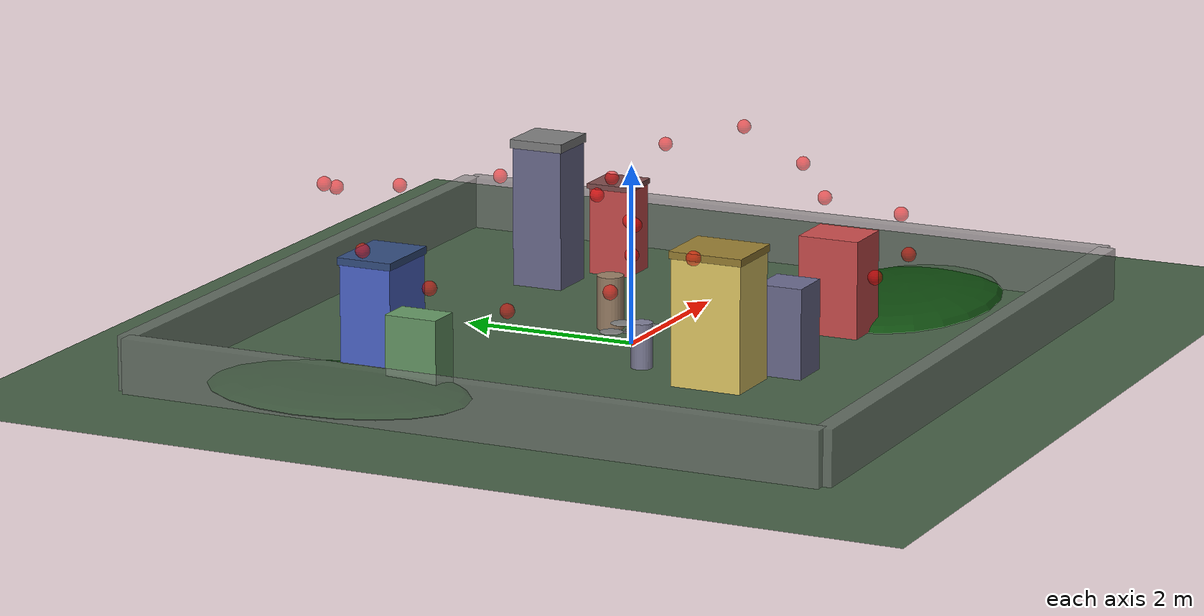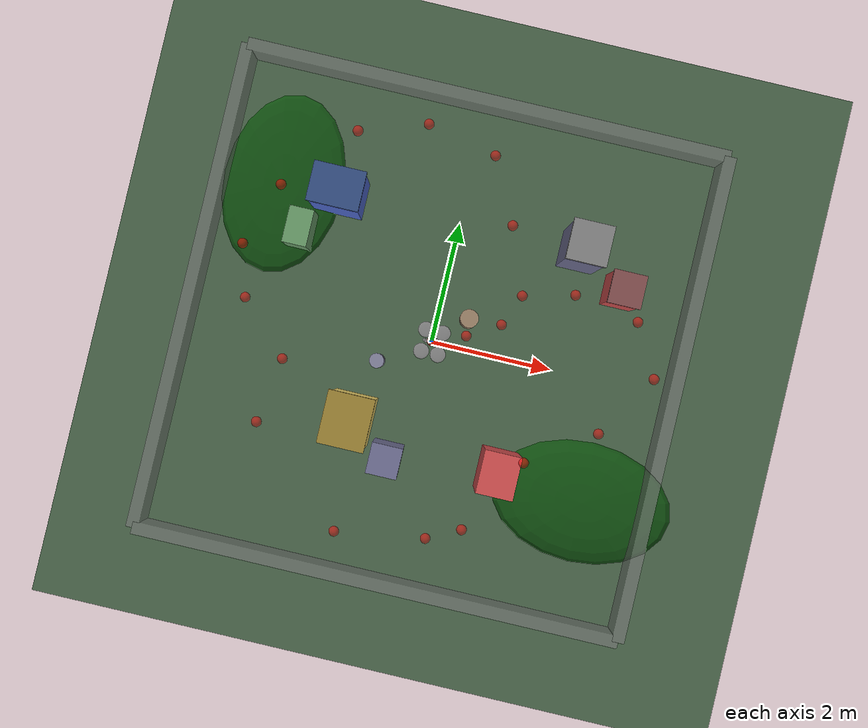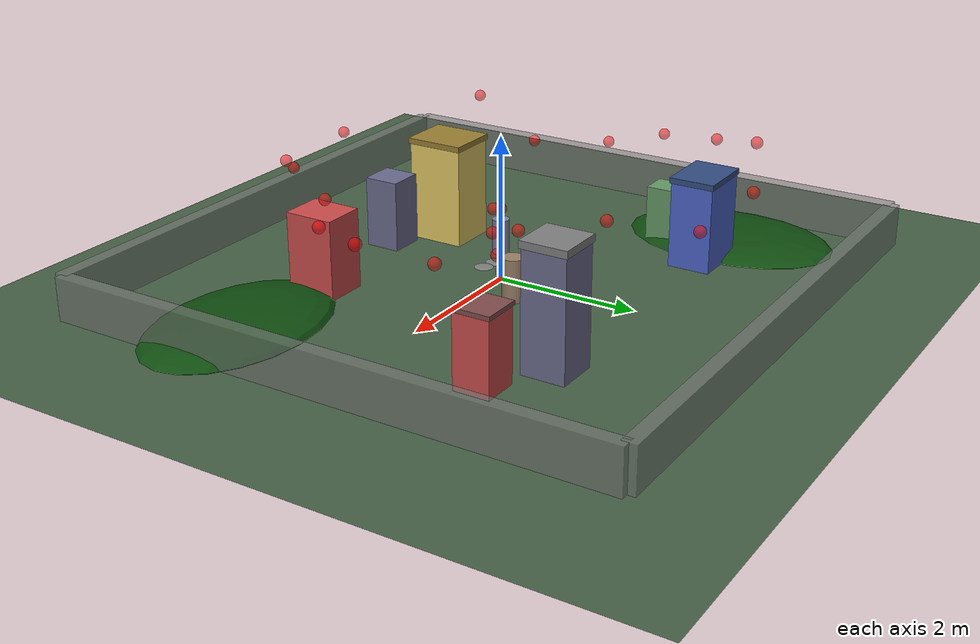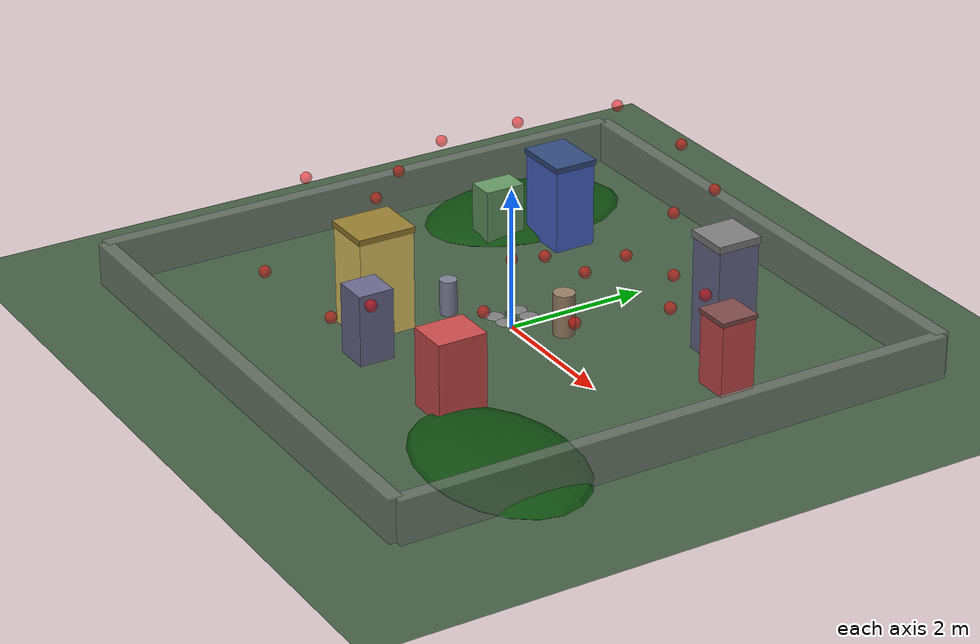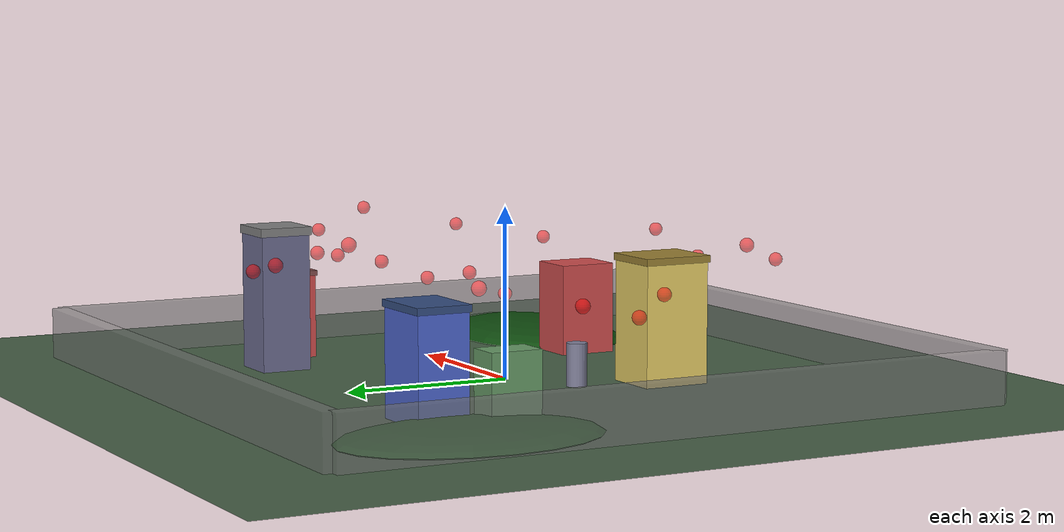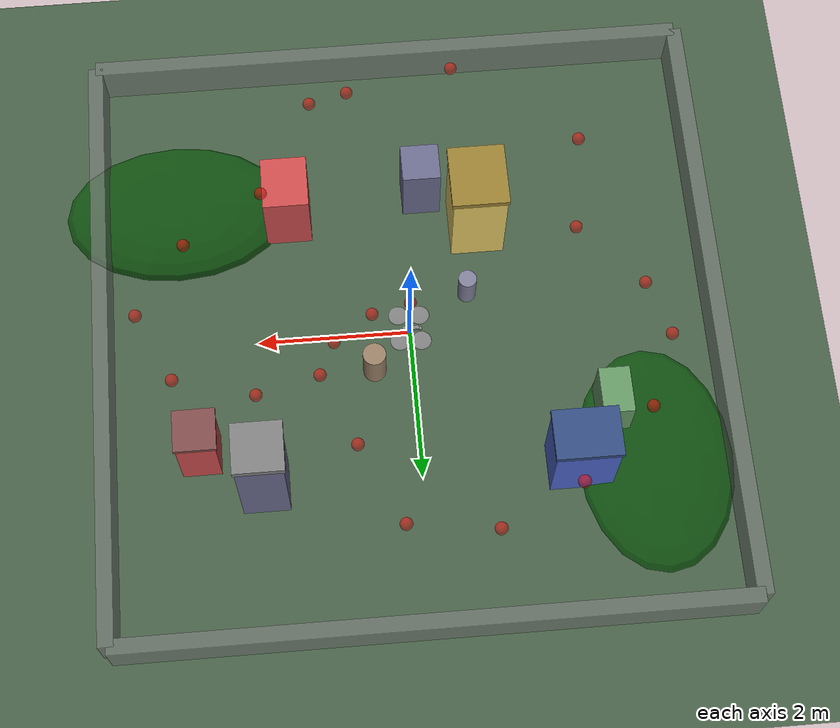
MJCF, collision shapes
<mujoco model="Skydio X2 scene">
  <include file="x2.xml"/>

  <statistic center="0 0 1" extent="4" meansize=".05"/>

  <visual>
    <headlight diffuse="0.8 0.8 0.8" ambient="0.3 0.3 0.3" specular="0 0 0"/>
    <rgba haze="0.15 0.25 0.35 1"/>
    <global azimuth="-20" elevation="-20" ellipsoidinertia="true"/>
  </visual>

  <asset>
    <texture type="skybox" builtin="gradient" rgb1="0.4 0.6 0.9" rgb2="0.1 0.2 0.4" width="512" height="3072"/>
    <texture type="2d" name="groundplane" builtin="checker" mark="edge" rgb1="0.3 0.4 0.3" rgb2="0.25 0.35 0.25"
      markrgb="0.8 0.8 0.8" width="300" height="300"/>
    <material name="groundplane" texture="groundplane" texuniform="true" texrepeat="10 10" reflectance="0.1"/>

    <!-- Building materials -->
    <texture type="2d" name="building_texture" builtin="flat" rgb1="0.6 0.6 0.7" width="100" height="100"/>
    <material name="building_mat" texture="building_texture" rgba="0.7 0.7 0.8 1" reflectance="0.3"/>
    <material name="building_red" rgba="0.8 0.3 0.3 1" reflectance="0.2"/>
    <material name="building_blue" rgba="0.3 0.4 0.8 1" reflectance="0.2"/>
    <material name="building_green" rgba="0.4 0.6 0.4 1" reflectance="0.2"/>
    <material name="building_yellow" rgba="0.9 0.8 0.4 1" reflectance="0.2"/>

    <!-- Terrain textures -->
    <texture type="2d" name="grass" builtin="flat" rgb1="0.2 0.5 0.2" width="100" height="100"/>
    <material name="grass_mat" texture="grass" rgba="0.3 0.6 0.3 1"/>

    <!-- Waypoint marker material -->
    <material name="waypoint_mat" rgba="1 0 0 0.5"/>
  </asset>

  <worldbody>
    <!-- Enhanced lighting -->
    <light pos="0 0 3" dir="0 0 -1" directional="true" diffuse="0.8 0.8 0.8"/>
    <light pos="2 2 3" dir="-0.5 -0.5 -1" directional="true" diffuse="0.4 0.4 0.5"/>

    <!-- Ground plane -->
    <geom name="floor" size="0 0 0.05" type="plane" material="groundplane"/>

    <!-- Terrain features - elevated areas / hills (visual only) -->
    <geom name="hill1" type="ellipsoid" size="1.5 1.0 0.2" pos="3 -2 0" material="grass_mat" contype="0" conaffinity="0"/>
    <geom name="hill2" type="ellipsoid" size="1.0 1.5 0.15" pos="-3 2 0" material="grass_mat" contype="0" conaffinity="0"/>

    <!-- Buildings - various sizes and colors with collisions enabled -->
    <!-- Tall building cluster 1 -->
    <body name="building1" pos="2 2 0">
      <geom type="box" size="0.3 0.3 0.8" pos="0 0 0.8" material="building_mat"/>
      <geom type="box" size="0.32 0.32 0.05" pos="0 0 1.65" rgba="0.5 0.5 0.5 1"/>
    </body>

    <body name="building2" pos="2.8 1.5 0">
      <geom type="box" size="0.25 0.25 0.5" pos="0 0 0.5" material="building_red"/>
      <geom type="box" size="0.27 0.27 0.03" pos="0 0 1.03" rgba="0.5 0.3 0.3 1"/>
    </body>

    <!-- Building cluster 2 -->
    <body name="building3" pos="-2 2 0">
      <geom type="box" size="0.4 0.3 0.6" pos="0 0 0.6" material="building_blue"/>
      <geom type="box" size="0.42 0.32 0.04" pos="0 0 1.24" rgba="0.2 0.3 0.5 1"/>
    </body>

    <body name="building4" pos="-2.5 1.3 0">
      <geom type="box" size="0.2 0.3 0.4" pos="0 0 0.4" material="building_green"/>
    </body>

    <!-- Building cluster 3 -->
    <body name="building5" pos="-1 -1.5 0">
      <geom type="box" size="0.35 0.4 0.7" pos="0 0 0.7" material="building_yellow"/>
      <geom type="box" size="0.37 0.42 0.04" pos="0 0 1.44" rgba="0.6 0.5 0.2 1"/>
    </body>

    <body name="building6" pos="-0.3 -2 0">
      <geom type="box" size="0.25 0.25 0.5" pos="0 0 0.5" material="building_mat"/>
    </body>

    <!-- Building cluster 4 -->
    <body name="building7" pos="1.5 -1.8 0">
      <geom type="box" size="0.3 0.35 0.55" pos="0 0 0.55" material="building_red"/>
    </body>

    <!-- Small structures / obstacles -->
    <body name="structure1" pos="0.5 0.5 0">
      <geom type="cylinder" size="0.15 0.3" pos="0 0 0.3" rgba="0.6 0.5 0.4 1"/>
    </body>

    <body name="structure2" pos="-0.8 -0.5 0">
      <geom type="cylinder" size="0.12 0.25" pos="0 0 0.25" rgba="0.5 0.5 0.6 1"/>
    </body>

    <!-- Waypoint markers - Urban parcours navigation path with improved obstacle clearance -->
    <geom name="waypoint0_marker" type="sphere" size="0.08" pos="0 0 1" material="waypoint_mat" contype="0" conaffinity="0"/>
    <geom name="waypoint1_marker" type="sphere" size="0.08" pos="0.5 0.2 1.2" material="waypoint_mat" contype="0" conaffinity="0"/>
    <geom name="waypoint2_marker" type="sphere" size="0.08" pos="1.2 1.0 1.3" material="waypoint_mat" contype="0" conaffinity="0"/>
    <geom name="waypoint3_marker" type="sphere" size="0.08" pos="0.8 2.0 1.5" material="waypoint_mat" contype="0" conaffinity="0"/>
    <geom name="waypoint4_marker" type="sphere" size="0.08" pos="0.3 3.0 1.4" material="waypoint_mat" contype="0" conaffinity="0"/>
    <geom name="waypoint5_marker" type="sphere" size="0.08" pos="-0.8 3.2 1.6" material="waypoint_mat" contype="0" conaffinity="0"/>
    <geom name="waypoint6_marker" type="sphere" size="0.08" pos="-1.8 2.8 1.9" material="waypoint_mat" contype="0" conaffinity="0"/>
    <geom name="waypoint7_marker" type="sphere" size="0.08" pos="-2.8 1.8 1.5" material="waypoint_mat" contype="0" conaffinity="0"/>
    <geom name="waypoint8_marker" type="sphere" size="0.08" pos="-3.2 0.8 1.3" material="waypoint_mat" contype="0" conaffinity="0"/>
    <geom name="waypoint9_marker" type="sphere" size="0.08" pos="-3.0 0.0 1.1" material="waypoint_mat" contype="0" conaffinity="0"/>
    <geom name="waypoint10_marker" type="sphere" size="0.08" pos="-2.2 -0.8 1.2" material="waypoint_mat" contype="0" conaffinity="0"/>
    <geom name="waypoint11_marker" type="sphere" size="0.08" pos="-2.3 -1.8 1.7" material="waypoint_mat" contype="0" conaffinity="0"/>
    <geom name="waypoint12_marker" type="sphere" size="0.08" pos="-0.8 -3.2 1.3" material="waypoint_mat" contype="0" conaffinity="0"/>
    <geom name="waypoint13_marker" type="sphere" size="0.08" pos="0.6 -3.0 1.2" material="waypoint_mat" contype="0" conaffinity="0"/>
    <geom name="waypoint14_marker" type="sphere" size="0.08" pos="1.1 -2.7 1.5" material="waypoint_mat" contype="0" conaffinity="0"/>
    <geom name="waypoint15_marker" type="sphere" size="0.08" pos="1.8 -1.5 1.4" material="waypoint_mat" contype="0" conaffinity="0"/>
    <geom name="waypoint16_marker" type="sphere" size="0.08" pos="2.8 -0.8 1.5" material="waypoint_mat" contype="0" conaffinity="0"/>
    <geom name="waypoint17_marker" type="sphere" size="0.08" pos="3.4 0.2 1.7" material="waypoint_mat" contype="0" conaffinity="0"/>
    <geom name="waypoint18_marker" type="sphere" size="0.08" pos="3.0 1.0 1.5" material="waypoint_mat" contype="0" conaffinity="0"/>
    <geom name="waypoint19_marker" type="sphere" size="0.08" pos="2.0 1.2 1.3" material="waypoint_mat" contype="0" conaffinity="0"/>
    <geom name="waypoint20_marker" type="sphere" size="0.08" pos="1.0 0.5 1.1" material="waypoint_mat" contype="0" conaffinity="0"/>

    <!-- Perimeter walls/boundaries (optional) -->
    <geom name="wall_north" type="box" size="4 0.1 0.3" pos="0 4 0.3" rgba="0.5 0.5 0.5 0.6" contype="0" conaffinity="0"/>
    <geom name="wall_south" type="box" size="4 0.1 0.3" pos="0 -4 0.3" rgba="0.5 0.5 0.5 0.6" contype="0" conaffinity="0"/>
    <geom name="wall_east" type="box" size="0.1 4 0.3" pos="4 0 0.3" rgba="0.5 0.5 0.5 0.6" contype="0" conaffinity="0"/>
    <geom name="wall_west" type="box" size="0.1 4 0.3" pos="-4 0 0.3" rgba="0.5 0.5 0.5 0.6" contype="0" conaffinity="0"/>
  </worldbody>
</mujoco>

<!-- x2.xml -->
<mujoco model="Skydio X2">
  <compiler autolimits="true" assetdir="assets"/>

  <option timestep="0.01" density="1.225" viscosity="1.8e-5"/>

  <default>
    <default class="x2">
      <geom mass="0"/>
      <motor ctrlrange="0 13"/>
      <mesh scale="0.01 0.01 0.01"/>
      <default class="visual">
        <geom group="2" type="mesh" contype="0" conaffinity="0"/>
      </default>
      <default class="collision">
        <geom group="3" type="box"/>
        <default class="rotor">
          <geom type="ellipsoid" size=".13 .13 .01"/>
        </default>
      </default>
      <site group="5"/>
    </default>
  </default>

  <asset>
    <texture type="2d" file="X2_lowpoly_texture_SpinningProps_1024.png"/>
    <material name="phong3SG" texture="X2_lowpoly_texture_SpinningProps_1024"/>
    <material name="invisible" rgba="0 0 0 0"/>

    <mesh class="x2" file="X2_lowpoly.obj"/>
  </asset>

  <worldbody>
    <light name="spotlight" mode="targetbodycom" target="x2" pos="0 -1 2"/>
    <body name="x2" pos="0 0 0.1" childclass="x2">
      <freejoint/>
      <camera name="track" pos="-1 0 .5" xyaxes="0 -1 0 1 0 2" mode="trackcom"/>
      <site name="imu" pos="0 0 .02"/>
      <geom material="phong3SG" mesh="X2_lowpoly" class="visual" quat="0 0 1 1"/>
      <geom class="collision" size=".06 .027 .02" pos=".04 0 .02"/>
      <geom class="collision" size=".06 .027 .02" pos=".04 0 .06"/>
      <geom class="collision" size=".05 .027 .02" pos="-.07 0 .065"/>
      <geom class="collision" size=".023 .017 .01" pos="-.137 .008 .065" quat="1 0 0 1"/>
      <geom name="rotor1" class="rotor" pos="-.14 -.18 .05" mass=".25"/>
      <geom name="rotor2" class="rotor" pos="-.14 .18 .05" mass=".25"/>
      <geom name="rotor3" class="rotor" pos=".14 .18 .08" mass=".25"/>
      <geom name="rotor4" class="rotor" pos=".14 -.18 .08" mass=".25"/>
      <geom size=".16 .04 .02" pos="0 0 0.02" type="ellipsoid" mass=".325" class="visual" material="invisible"/>
      <site name="thrust1" pos="-.14 -.18 .05"/>
      <site name="thrust2" pos="-.14 .18 .05"/>
      <site name="thrust3" pos=".14 .18 .08"/>
      <site name="thrust4" pos=".14 -.18 .08"/>

      <!-- LIDAR sensor sites - spherical coverage -->
      <!-- Horizontal ring (8 directions at 45° intervals) -->
      <site name="lidar_0" pos="0.08 0 0.04" size="0.01" rgba="1 0 0 1" zaxis="1 0 0"/>    <!-- Forward -->
      <site name="lidar_45" pos="0.057 0.057 0.04" size="0.01" rgba="1 0 0 1" zaxis="0.707 0.707 0"/>    <!-- Forward-right -->
      <site name="lidar_90" pos="0 0.08 0.04" size="0.01" rgba="1 0 0 1" zaxis="0 1 0"/>    <!-- Right -->
      <site name="lidar_135" pos="-0.057 0.057 0.04" size="0.01" rgba="1 0 0 1" zaxis="-0.707 0.707 0"/>  <!-- Back-right -->
      <site name="lidar_180" pos="-0.08 0 0.04" size="0.01" rgba="1 0 0 1" zaxis="-1 0 0"/>  <!-- Back -->
      <site name="lidar_225" pos="-0.057 -0.057 0.04" size="0.01" rgba="1 0 0 1" zaxis="-0.707 -0.707 0"/> <!-- Back-left -->
      <site name="lidar_270" pos="0 -0.08 0.04" size="0.01" rgba="1 0 0 1" zaxis="0 -1 0"/>  <!-- Left -->
      <site name="lidar_315" pos="0.057 -0.057 0.04" size="0.01" rgba="1 0 0 1" zaxis="0.707 -0.707 0"/>  <!-- Forward-left -->

      <!-- Upper ring (8 directions, 30° elevation) -->
      <site name="lidar_up_0" pos="0.069 0 0.07" size="0.01" rgba="1 0.5 0 1" zaxis="0.866 0 0.5"/>
      <site name="lidar_up_45" pos="0.049 0.049 0.07" size="0.01" rgba="1 0.5 0 1" zaxis="0.612 0.612 0.5"/>
      <site name="lidar_up_90" pos="0 0.069 0.07" size="0.01" rgba="1 0.5 0 1" zaxis="0 0.866 0.5"/>
      <site name="lidar_up_135" pos="-0.049 0.049 0.07" size="0.01" rgba="1 0.5 0 1" zaxis="-0.612 0.612 0.5"/>
      <site name="lidar_up_180" pos="-0.069 0 0.07" size="0.01" rgba="1 0.5 0 1" zaxis="-0.866 0 0.5"/>
      <site name="lidar_up_225" pos="-0.049 -0.049 0.07" size="0.01" rgba="1 0.5 0 1" zaxis="-0.612 -0.612 0.5"/>
      <site name="lidar_up_270" pos="0 -0.069 0.07" size="0.01" rgba="1 0.5 0 1" zaxis="0 -0.866 0.5"/>
      <site name="lidar_up_315" pos="0.049 -0.049 0.07" size="0.01" rgba="1 0.5 0 1" zaxis="0.612 -0.612 0.5"/>

      <!-- Lower ring (8 directions, -30° elevation) -->
      <site name="lidar_down_0" pos="0.069 0 0.01" size="0.01" rgba="0 1 1 1" zaxis="0.866 0 -0.5"/>
      <site name="lidar_down_45" pos="0.049 0.049 0.01" size="0.01" rgba="0 1 1 1" zaxis="0.612 0.612 -0.5"/>
      <site name="lidar_down_90" pos="0 0.069 0.01" size="0.01" rgba="0 1 1 1" zaxis="0 0.866 -0.5"/>
      <site name="lidar_down_135" pos="-0.049 0.049 0.01" size="0.01" rgba="0 1 1 1" zaxis="-0.612 0.612 -0.5"/>
      <site name="lidar_down_180" pos="-0.069 0 0.01" size="0.01" rgba="0 1 1 1" zaxis="-0.866 0 -0.5"/>
      <site name="lidar_down_225" pos="-0.049 -0.049 0.01" size="0.01" rgba="0 1 1 1" zaxis="-0.612 -0.612 -0.5"/>
      <site name="lidar_down_270" pos="0 -0.069 0.01" size="0.01" rgba="0 1 1 1" zaxis="0 -0.866 -0.5"/>
      <site name="lidar_down_315" pos="0.049 -0.049 0.01" size="0.01" rgba="0 1 1 1" zaxis="0.612 -0.612 -0.5"/>

      <!-- Zenith and nadir -->
      <site name="lidar_zenith" pos="0 0 0.09" size="0.01" rgba="0 1 0 1" zaxis="0 0 1"/>
      <site name="lidar_nadir" pos="0 0 -0.01" size="0.01" rgba="0 0 1 1" zaxis="0 0 -1"/>
    </body>
  </worldbody>

  <actuator>
    <motor class="x2" name="thrust1" site="thrust1" gear="0 0 1 0 0 .0201"/>
    <motor class="x2" name="thrust2" site="thrust2" gear="0 0 1 0 0 -.0201"/>
    <motor class="x2" name="thrust3" site="thrust3" gear="0 0 1 0 0 .0201"/>
    <motor class="x2" name="thrust4" site="thrust4" gear="0 0 1 0 0 -.0201"/>
  </actuator>

  <sensor>
    <gyro name="body_gyro" site="imu"/>
    <accelerometer name="body_linacc" site="imu"/>
    <framequat name="body_quat" objtype="site" objname="imu"/>

    <!-- LIDAR rangefinder sensors - spherical coverage -->
    <!-- Horizontal ring -->
    <rangefinder name="lidar_0" site="lidar_0" cutoff="5"/>
    <rangefinder name="lidar_45" site="lidar_45" cutoff="5"/>
    <rangefinder name="lidar_90" site="lidar_90" cutoff="5"/>
    <rangefinder name="lidar_135" site="lidar_135" cutoff="5"/>
    <rangefinder name="lidar_180" site="lidar_180" cutoff="5"/>
    <rangefinder name="lidar_225" site="lidar_225" cutoff="5"/>
    <rangefinder name="lidar_270" site="lidar_270" cutoff="5"/>
    <rangefinder name="lidar_315" site="lidar_315" cutoff="5"/>

    <!-- Upper ring -->
    <rangefinder name="lidar_up_0" site="lidar_up_0" cutoff="5"/>
    <rangefinder name="lidar_up_45" site="lidar_up_45" cutoff="5"/>
    <rangefinder name="lidar_up_90" site="lidar_up_90" cutoff="5"/>
    <rangefinder name="lidar_up_135" site="lidar_up_135" cutoff="5"/>
    <rangefinder name="lidar_up_180" site="lidar_up_180" cutoff="5"/>
    <rangefinder name="lidar_up_225" site="lidar_up_225" cutoff="5"/>
    <rangefinder name="lidar_up_270" site="lidar_up_270" cutoff="5"/>
    <rangefinder name="lidar_up_315" site="lidar_up_315" cutoff="5"/>

    <!-- Lower ring -->
    <rangefinder name="lidar_down_0" site="lidar_down_0" cutoff="5"/>
    <rangefinder name="lidar_down_45" site="lidar_down_45" cutoff="5"/>
    <rangefinder name="lidar_down_90" site="lidar_down_90" cutoff="5"/>
    <rangefinder name="lidar_down_135" site="lidar_down_135" cutoff="5"/>
    <rangefinder name="lidar_down_180" site="lidar_down_180" cutoff="5"/>
    <rangefinder name="lidar_down_225" site="lidar_down_225" cutoff="5"/>
    <rangefinder name="lidar_down_270" site="lidar_down_270" cutoff="5"/>
    <rangefinder name="lidar_down_315" site="lidar_down_315" cutoff="5"/>

    <!-- Zenith and nadir -->
    <rangefinder name="lidar_zenith" site="lidar_zenith" cutoff="5"/>
    <rangefinder name="lidar_nadir" site="lidar_nadir" cutoff="5"/>
  </sensor>

  <keyframe>
    <key name="hover" qpos="0 0 .3 1 0 0 0" ctrl="3.2495625 3.2495625 3.2495625 3.2495625"/>
  </keyframe>
</mujoco>
